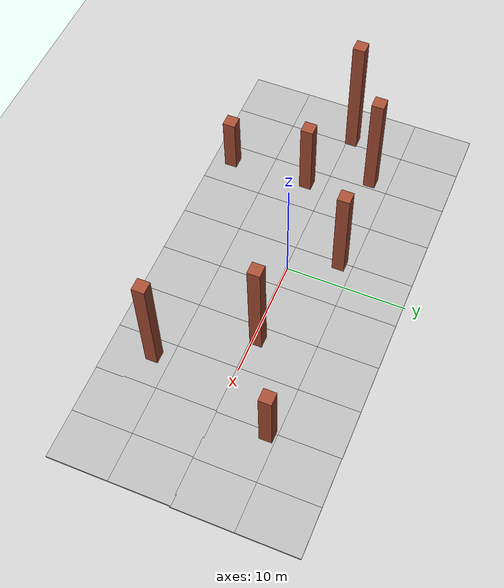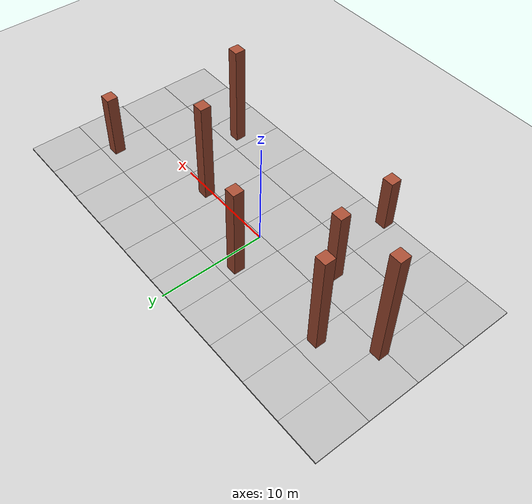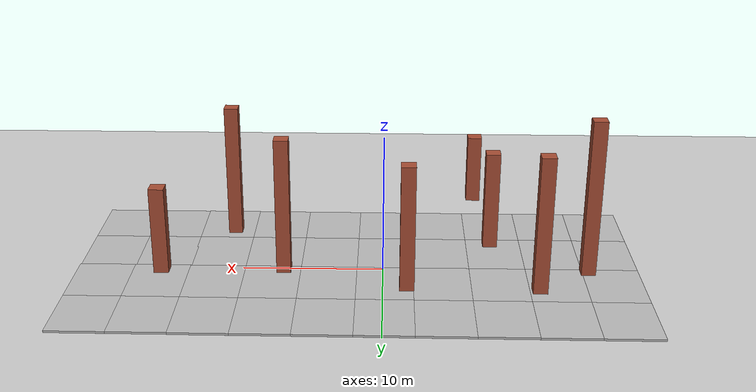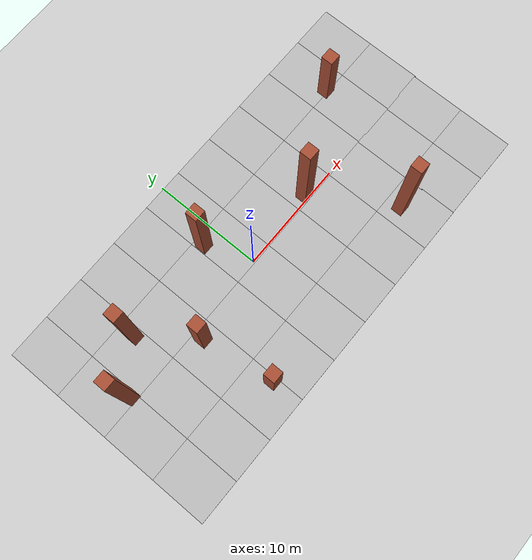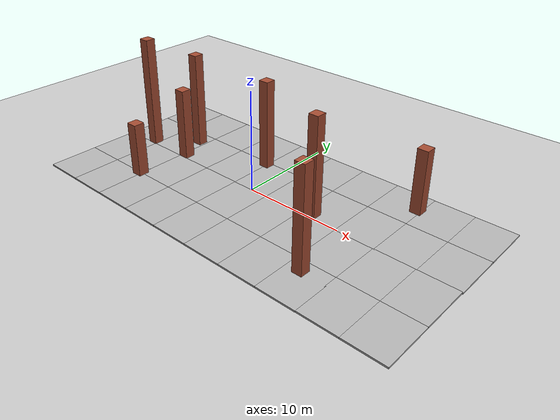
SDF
<sdf version="1.7">
 <world name="default">
  <light name="sun" type="directional">
   <pose>0 0 10 0 -0 0</pose>
   <diffuse>0.8 0.8 0.8 1</diffuse>
   <specular>0.1 0.1 0.1 1</specular>
   <attenuation>
    <range>1000</range>
    <constant>0.9</constant>
    <linear>0.01</linear>
    <quadratic>0.001</quadratic>
   </attenuation>
   <direction>-0.5 0.5 -1</direction>
   <spot><inner_angle>0</inner_angle><outer_angle>0</outer_angle><falloff>0</falloff></spot>
  </light>
  <model name="ground_plane">
   <static>1</static>
   <link name="link">
    <collision name="collision">
     <geometry><plane><normal>0 0 1</normal><size>100 100</size></plane></geometry>
     <surface><friction><ode><mu>100</mu><mu2>50</mu2></ode></friction></surface>
    </collision>
    <visual name="visual">
     <cast_shadows>0</cast_shadows>
     <geometry><plane><normal>0 0 1</normal><size>100 100</size></plane></geometry>
     <material>
      <script><uri>file://media/materials/scripts/gazebo.material</uri><name>Gazebo/Grey</name></script>
     </material>
    </visual>
   </link>
  </model>
  <gravity>0 0 -9.8</gravity>
  <magnetic_field>6e-06 2.3e-05 -4.2e-05</magnetic_field>
  <atmosphere type="adiabatic"/>
  <physics name="default_physics" default="0" type="ode">
   <max_step_size>0.001</max_step_size>
   <real_time_factor>1</real_time_factor>
   <real_time_update_rate>1000</real_time_update_rate>
  </physics>
  <scene><ambient>0.4 0.4 0.4 1</ambient><background>0.7 0.7 0.7 1</background><shadows>1</shadows></scene>
  <spherical_coordinates>
   <surface_model>EARTH_WGS84</surface_model>
   <latitude_deg>0</latitude_deg>
   <longitude_deg>0</longitude_deg>
   <elevation>0</elevation>
   <heading_deg>0</heading_deg>
  </spherical_coordinates>
  <model name="mud_box">
   <static>1</static>
   <link name="link">
    <collision name="collision"><geometry><box><size>8 10 0.2</size></box></geometry></collision>
    <visual name="visual_1">
     <pose>-2 2.5 0 0 -0 0</pose>
     <cast_shadows>0</cast_shadows>
     <geometry><box><size>4 5 0.2</size></box></geometry>
     <material>
      <script>
       <uri>model://mud_box/materials/scripts</uri>
       <uri>model://mud_box/materials/textures</uri>
       <name>vrc/mud</name>
      </script>
     </material>
    </visual>
    <visual name="visual_2">
     <pose>2 2.5 0 0 -0 0</pose>
     <cast_shadows>0</cast_shadows>
     <geometry><box><size>4 5 0.2</size></box></geometry>
     <material>
      <script>
       <uri>model://mud_box/materials/scripts</uri>
       <uri>model://mud_box/materials/textures</uri>
       <name>vrc/mud</name>
      </script>
     </material>
    </visual>
    <visual name="visual_3">
     <pose>2 -2.5 0 0 -0 0</pose>
     <cast_shadows>0</cast_shadows>
     <geometry><box><size>4 5 0.2</size></box></geometry>
     <material>
      <script>
       <uri>model://mud_box/materials/scripts</uri>
       <uri>model://mud_box/materials/textures</uri>
       <name>vrc/mud</name>
      </script>
     </material>
    </visual>
    <visual name="visual_4">
     <pose>-2 -2.5 0 0 -0 0</pose>
     <cast_shadows>0</cast_shadows>
     <geometry><box><size>4 5 0.2</size></box></geometry>
     <material>
      <script>
       <uri>model://mud_box/materials/scripts</uri>
       <uri>model://mud_box/materials/textures</uri>
       <name>vrc/mud</name>
      </script>
     </material>
    </visual>
   </link>
   <pose>-6.12765 4.83622 0 0 -0 0</pose>
  </model>
  <model name="mud_box_0">
   <static>1</static>
   <link name="link">
    <collision name="collision"><geometry><box><size>8 10 0.2</size></box></geometry></collision>
    <visual name="visual_1">
     <pose>-2 2.5 0 0 -0 0</pose>
     <cast_shadows>0</cast_shadows>
     <geometry><box><size>4 5 0.2</size></box></geometry>
     <material>
      <script>
       <uri>model://mud_box/materials/scripts</uri>
       <uri>model://mud_box/materials/textures</uri>
       <name>vrc/mud</name>
      </script>
     </material>
    </visual>
    <visual name="visual_2">
     <pose>2 2.5 0 0 -0 0</pose>
     <cast_shadows>0</cast_shadows>
     <geometry><box><size>4 5 0.2</size></box></geometry>
     <material>
      <script>
       <uri>model://mud_box/materials/scripts</uri>
       <uri>model://mud_box/materials/textures</uri>
       <name>vrc/mud</name>
      </script>
     </material>
    </visual>
    <visual name="visual_3">
     <pose>2 -2.5 0 0 -0 0</pose>
     <cast_shadows>0</cast_shadows>
     <geometry><box><size>4 5 0.2</size></box></geometry>
     <material>
      <script>
       <uri>model://mud_box/materials/scripts</uri>
       <uri>model://mud_box/materials/textures</uri>
       <name>vrc/mud</name>
      </script>
     </material>
    </visual>
    <visual name="visual_4">
     <pose>-2 -2.5 0 0 -0 0</pose>
     <cast_shadows>0</cast_shadows>
     <geometry><box><size>4 5 0.2</size></box></geometry>
     <material>
      <script>
       <uri>model://mud_box/materials/scripts</uri>
       <uri>model://mud_box/materials/textures</uri>
       <name>vrc/mud</name>
      </script>
     </material>
    </visual>
   </link>
   <pose>1.86767 4.83104 0 0 -0 0</pose>
  </model>
  <model name="mud_box_1">
   <static>1</static>
   <link name="link">
    <collision name="collision"><geometry><box><size>8 10 0.2</size></box></geometry></collision>
    <visual name="visual_1">
     <pose>-2 2.5 0 0 -0 0</pose>
     <cast_shadows>0</cast_shadows>
     <geometry><box><size>4 5 0.2</size></box></geometry>
     <material>
      <script>
       <uri>model://mud_box/materials/scripts</uri>
       <uri>model://mud_box/materials/textures</uri>
       <name>vrc/mud</name>
      </script>
     </material>
    </visual>
    <visual name="visual_2">
     <pose>2 2.5 0 0 -0 0</pose>
     <cast_shadows>0</cast_shadows>
     <geometry><box><size>4 5 0.2</size></box></geometry>
     <material>
      <script>
       <uri>model://mud_box/materials/scripts</uri>
       <uri>model://mud_box/materials/textures</uri>
       <name>vrc/mud</name>
      </script>
     </material>
    </visual>
    <visual name="visual_3">
     <pose>2 -2.5 0 0 -0 0</pose>
     <cast_shadows>0</cast_shadows>
     <geometry><box><size>4 5 0.2</size></box></geometry>
     <material>
      <script>
       <uri>model://mud_box/materials/scripts</uri>
       <uri>model://mud_box/materials/textures</uri>
       <name>vrc/mud</name>
      </script>
     </material>
    </visual>
    <visual name="visual_4">
     <pose>-2 -2.5 0 0 -0 0</pose>
     <cast_shadows>0</cast_shadows>
     <geometry><box><size>4 5 0.2</size></box></geometry>
     <material>
      <script>
       <uri>model://mud_box/materials/scripts</uri>
       <uri>model://mud_box/materials/textures</uri>
       <name>vrc/mud</name>
      </script>
     </material>
    </visual>
   </link>
   <pose>-6.12792 -5.13998 0 0 -0 0</pose>
  </model>
  <model name="mud_box_2">
   <static>1</static>
   <link name="link">
    <collision name="collision"><geometry><box><size>8 10 0.2</size></box></geometry></collision>
    <visual name="visual_1">
     <pose>-2 2.5 0 0 -0 0</pose>
     <cast_shadows>0</cast_shadows>
     <geometry><box><size>4 5 0.2</size></box></geometry>
     <material>
      <script>
       <uri>model://mud_box/materials/scripts</uri>
       <uri>model://mud_box/materials/textures</uri>
       <name>vrc/mud</name>
      </script>
     </material>
    </visual>
    <visual name="visual_2">
     <pose>2 2.5 0 0 -0 0</pose>
     <cast_shadows>0</cast_shadows>
     <geometry><box><size>4 5 0.2</size></box></geometry>
     <material>
      <script>
       <uri>model://mud_box/materials/scripts</uri>
       <uri>model://mud_box/materials/textures</uri>
       <name>vrc/mud</name>
      </script>
     </material>
    </visual>
    <visual name="visual_3">
     <pose>2 -2.5 0 0 -0 0</pose>
     <cast_shadows>0</cast_shadows>
     <geometry><box><size>4 5 0.2</size></box></geometry>
     <material>
      <script>
       <uri>model://mud_box/materials/scripts</uri>
       <uri>model://mud_box/materials/textures</uri>
       <name>vrc/mud</name>
      </script>
     </material>
    </visual>
    <visual name="visual_4">
     <pose>-2 -2.5 0 0 -0 0</pose>
     <cast_shadows>0</cast_shadows>
     <geometry><box><size>4 5 0.2</size></box></geometry>
     <material>
      <script>
       <uri>model://mud_box/materials/scripts</uri>
       <uri>model://mud_box/materials/textures</uri>
       <name>vrc/mud</name>
      </script>
     </material>
    </visual>
   </link>
   <pose>1.85975 -5.14192 0 0 -0 0</pose>
  </model>
  <model name="mud_box_0_clone">
   <static>1</static>
   <link name="link">
    <collision name="collision"><geometry><box><size>8 10 0.2</size></box></geometry></collision>
    <visual name="visual_1">
     <pose>-2 2.5 0 0 -0 0</pose>
     <cast_shadows>0</cast_shadows>
     <geometry><box><size>4 5 0.2</size></box></geometry>
     <material>
      <script>
       <uri>model://mud_box/materials/scripts</uri>
       <uri>model://mud_box/materials/textures</uri>
       <name>vrc/mud</name>
      </script>
     </material>
    </visual>
    <visual name="visual_2">
     <pose>2 2.5 0 0 -0 0</pose>
     <cast_shadows>0</cast_shadows>
     <geometry><box><size>4 5 0.2</size></box></geometry>
     <material>
      <script>
       <uri>model://mud_box/materials/scripts</uri>
       <uri>model://mud_box/materials/textures</uri>
       <name>vrc/mud</name>
      </script>
     </material>
    </visual>
    <visual name="visual_3">
     <pose>2 -2.5 0 0 -0 0</pose>
     <cast_shadows>0</cast_shadows>
     <geometry><box><size>4 5 0.2</size></box></geometry>
     <material>
      <script>
       <uri>model://mud_box/materials/scripts</uri>
       <uri>model://mud_box/materials/textures</uri>
       <name>vrc/mud</name>
      </script>
     </material>
    </visual>
    <visual name="visual_4">
     <pose>-2 -2.5 0 0 -0 0</pose>
     <cast_shadows>0</cast_shadows>
     <geometry><box><size>4 5 0.2</size></box></geometry>
     <material>
      <script>
       <uri>model://mud_box/materials/scripts</uri>
       <uri>model://mud_box/materials/textures</uri>
       <name>vrc/mud</name>
      </script>
     </material>
    </visual>
   </link>
   <pose>9.85757 -5.14216 0 0 -0 0</pose>
  </model>
  <model name="mud_box_0_clone_clone">
   <static>1</static>
   <link name="link">
    <collision name="collision"><geometry><box><size>8 10 0.2</size></box></geometry></collision>
    <visual name="visual_1">
     <pose>-2 2.5 0 0 -0 0</pose>
     <cast_shadows>0</cast_shadows>
     <geometry><box><size>4 5 0.2</size></box></geometry>
     <material>
      <script>
       <uri>model://mud_box/materials/scripts</uri>
       <uri>model://mud_box/materials/textures</uri>
       <name>vrc/mud</name>
      </script>
     </material>
    </visual>
    <visual name="visual_2">
     <pose>2 2.5 0 0 -0 0</pose>
     <cast_shadows>0</cast_shadows>
     <geometry><box><size>4 5 0.2</size></box></geometry>
     <material>
      <script>
       <uri>model://mud_box/materials/scripts</uri>
       <uri>model://mud_box/materials/textures</uri>
       <name>vrc/mud</name>
      </script>
     </material>
    </visual>
    <visual name="visual_3">
     <pose>2 -2.5 0 0 -0 0</pose>
     <cast_shadows>0</cast_shadows>
     <geometry><box><size>4 5 0.2</size></box></geometry>
     <material>
      <script>
       <uri>model://mud_box/materials/scripts</uri>
       <uri>model://mud_box/materials/textures</uri>
       <name>vrc/mud</name>
      </script>
     </material>
    </visual>
    <visual name="visual_4">
     <pose>-2 -2.5 0 0 -0 0</pose>
     <cast_shadows>0</cast_shadows>
     <geometry><box><size>4 5 0.2</size></box></geometry>
     <material>
      <script>
       <uri>model://mud_box/materials/scripts</uri>
       <uri>model://mud_box/materials/textures</uri>
       <name>vrc/mud</name>
      </script>
     </material>
    </visual>
   </link>
   <pose>17.7661 -5.12084 0 0 -0 0</pose>
  </model>
  <model name="mud_box_0_clone_clone_0">
   <static>1</static>
   <link name="link">
    <collision name="collision"><geometry><box><size>8 10 0.2</size></box></geometry></collision>
    <visual name="visual_1">
     <pose>-2 2.5 0 0 -0 0</pose>
     <cast_shadows>0</cast_shadows>
     <geometry><box><size>4 5 0.2</size></box></geometry>
     <material>
      <script>
       <uri>model://mud_box/materials/scripts</uri>
       <uri>model://mud_box/materials/textures</uri>
       <name>vrc/mud</name>
      </script>
     </material>
    </visual>
    <visual name="visual_2">
     <pose>2 2.5 0 0 -0 0</pose>
     <cast_shadows>0</cast_shadows>
     <geometry><box><size>4 5 0.2</size></box></geometry>
     <material>
      <script>
       <uri>model://mud_box/materials/scripts</uri>
       <uri>model://mud_box/materials/textures</uri>
       <name>vrc/mud</name>
      </script>
     </material>
    </visual>
    <visual name="visual_3">
     <pose>2 -2.5 0 0 -0 0</pose>
     <cast_shadows>0</cast_shadows>
     <geometry><box><size>4 5 0.2</size></box></geometry>
     <material>
      <script>
       <uri>model://mud_box/materials/scripts</uri>
       <uri>model://mud_box/materials/textures</uri>
       <name>vrc/mud</name>
      </script>
     </material>
    </visual>
    <visual name="visual_4">
     <pose>-2 -2.5 0 0 -0 0</pose>
     <cast_shadows>0</cast_shadows>
     <geometry><box><size>4 5 0.2</size></box></geometry>
     <material>
      <script>
       <uri>model://mud_box/materials/scripts</uri>
       <uri>model://mud_box/materials/textures</uri>
       <name>vrc/mud</name>
      </script>
     </material>
    </visual>
   </link>
   <pose>17.8432 4.79546 0 0 -0 0</pose>
  </model>
  <model name="mud_box_0_clone_clone_1">
   <static>1</static>
   <link name="link">
    <collision name="collision"><geometry><box><size>8 10 0.2</size></box></geometry></collision>
    <visual name="visual_1">
     <pose>-2 2.5 0 0 -0 0</pose>
     <cast_shadows>0</cast_shadows>
     <geometry><box><size>4 5 0.2</size></box></geometry>
     <material>
      <script>
       <uri>model://mud_box/materials/scripts</uri>
       <uri>model://mud_box/materials/textures</uri>
       <name>vrc/mud</name>
      </script>
     </material>
    </visual>
    <visual name="visual_2">
     <pose>2 2.5 0 0 -0 0</pose>
     <cast_shadows>0</cast_shadows>
     <geometry><box><size>4 5 0.2</size></box></geometry>
     <material>
      <script>
       <uri>model://mud_box/materials/scripts</uri>
       <uri>model://mud_box/materials/textures</uri>
       <name>vrc/mud</name>
      </script>
     </material>
    </visual>
    <visual name="visual_3">
     <pose>2 -2.5 0 0 -0 0</pose>
     <cast_shadows>0</cast_shadows>
     <geometry><box><size>4 5 0.2</size></box></geometry>
     <material>
      <script>
       <uri>model://mud_box/materials/scripts</uri>
       <uri>model://mud_box/materials/textures</uri>
       <name>vrc/mud</name>
      </script>
     </material>
    </visual>
    <visual name="visual_4">
     <pose>-2 -2.5 0 0 -0 0</pose>
     <cast_shadows>0</cast_shadows>
     <geometry><box><size>4 5 0.2</size></box></geometry>
     <material>
      <script>
       <uri>model://mud_box/materials/scripts</uri>
       <uri>model://mud_box/materials/textures</uri>
       <name>vrc/mud</name>
      </script>
     </material>
    </visual>
   </link>
   <pose>-14.1276 -5.15209 0 0 -0 0</pose>
  </model>
  <model name="mud_box_0_clone_clone_2">
   <static>1</static>
   <link name="link">
    <collision name="collision"><geometry><box><size>8 10 0.2</size></box></geometry></collision>
    <visual name="visual_1">
     <pose>-2 2.5 0 0 -0 0</pose>
     <cast_shadows>0</cast_shadows>
     <geometry><box><size>4 5 0.2</size></box></geometry>
     <material>
      <script>
       <uri>model://mud_box/materials/scripts</uri>
       <uri>model://mud_box/materials/textures</uri>
       <name>vrc/mud</name>
      </script>
     </material>
    </visual>
    <visual name="visual_2">
     <pose>2 2.5 0 0 -0 0</pose>
     <cast_shadows>0</cast_shadows>
     <geometry><box><size>4 5 0.2</size></box></geometry>
     <material>
      <script>
       <uri>model://mud_box/materials/scripts</uri>
       <uri>model://mud_box/materials/textures</uri>
       <name>vrc/mud</name>
      </script>
     </material>
    </visual>
    <visual name="visual_3">
     <pose>2 -2.5 0 0 -0 0</pose>
     <cast_shadows>0</cast_shadows>
     <geometry><box><size>4 5 0.2</size></box></geometry>
     <material>
      <script>
       <uri>model://mud_box/materials/scripts</uri>
       <uri>model://mud_box/materials/textures</uri>
       <name>vrc/mud</name>
      </script>
     </material>
    </visual>
    <visual name="visual_4">
     <pose>-2 -2.5 0 0 -0 0</pose>
     <cast_shadows>0</cast_shadows>
     <geometry><box><size>4 5 0.2</size></box></geometry>
     <material>
      <script>
       <uri>model://mud_box/materials/scripts</uri>
       <uri>model://mud_box/materials/textures</uri>
       <name>vrc/mud</name>
      </script>
     </material>
    </visual>
   </link>
   <pose>-14.1258 4.84756 0 0 -0 0</pose>
  </model>
  <model name="mud_box_3">
   <static>1</static>
   <link name="link">
    <collision name="collision"><geometry><box><size>8 10 0.2</size></box></geometry></collision>
    <visual name="visual_1">
     <pose>-2 2.5 0 0 -0 0</pose>
     <cast_shadows>0</cast_shadows>
     <geometry><box><size>4 5 0.2</size></box></geometry>
     <material>
      <script>
       <uri>model://mud_box/materials/scripts</uri>
       <uri>model://mud_box/materials/textures</uri>
       <name>vrc/mud</name>
      </script>
     </material>
    </visual>
    <visual name="visual_2">
     <pose>2 2.5 0 0 -0 0</pose>
     <cast_shadows>0</cast_shadows>
     <geometry><box><size>4 5 0.2</size></box></geometry>
     <material>
      <script>
       <uri>model://mud_box/materials/scripts</uri>
       <uri>model://mud_box/materials/textures</uri>
       <name>vrc/mud</name>
      </script>
     </material>
    </visual>
    <visual name="visual_3">
     <pose>2 -2.5 0 0 -0 0</pose>
     <cast_shadows>0</cast_shadows>
     <geometry><box><size>4 5 0.2</size></box></geometry>
     <material>
      <script>
       <uri>model://mud_box/materials/scripts</uri>
       <uri>model://mud_box/materials/textures</uri>
       <name>vrc/mud</name>
      </script>
     </material>
    </visual>
    <visual name="visual_4">
     <pose>-2 -2.5 0 0 -0 0</pose>
     <cast_shadows>0</cast_shadows>
     <geometry><box><size>4 5 0.2</size></box></geometry>
     <material>
      <script>
       <uri>model://mud_box/materials/scripts</uri>
       <uri>model://mud_box/materials/textures</uri>
       <name>vrc/mud</name>
      </script>
     </material>
    </visual>
   </link>
   <pose>9.84986 4.82173 0 0 -0 0</pose>
  </model>
  <audio><device>default</device></audio>
  <model name="Untitled">
   <pose>-10.5221 3.76724 0 0 -0 0</pose>
   <link name="Wall_0">
    <collision name="Wall_0_Collision">
     <geometry><box><size>1.01 1 9</size></box></geometry>
     <pose>0 0 5 0 -0 0</pose>
    </collision>
    <visual name="Wall_0_Visual">
     <pose>0 0 5 0 -0 0</pose>
     <geometry><box><size>1.01 1 10</size></box></geometry>
     <material>
      <script><uri>file://media/materials/scripts/gazebo.material</uri><name>Gazebo/Bricks</name></script>
      <ambient>1 1 1 1</ambient>
     </material>
     <meta><layer>0</layer></meta>
    </visual>
    <pose>-0.275 -0.51 0 0 -0 0</pose>
   </link>
   <static>1</static>
  </model>
  <model name="Untitled_clone">
   <pose>-7.3242 -0.826882 0 0 -0 0</pose>
   <link name="Wall_0">
    <collision name="Wall_0_Collision">
     <geometry><box><size>1.01 1 10</size></box></geometry>
     <pose>0 0 5 0 -0 0</pose>
    </collision>
    <visual name="Wall_0_Visual">
     <pose>0 0 5 0 -0 0</pose>
     <geometry><box><size>1.01 1 7</size></box></geometry>
     <material>
      <script><uri>file://media/materials/scripts/gazebo.material</uri><name>Gazebo/Bricks</name></script>
      <ambient>1 1 1 1</ambient>
     </material>
     <meta><layer>0</layer></meta>
    </visual>
    <pose>-0.275 -0.51 0 0 -0 0</pose>
   </link>
   <static>1</static>
  </model>
  <model name="Untitled_clone_0">
   <pose>-14.2371 0.78762 0 0 -0 0</pose>
   <link name="Wall_0">
    <collision name="Wall_0_Collision">
     <geometry><box><size>1.01 1 5</size></box></geometry>
     <pose>0 0 5 0 -0 0</pose>
    </collision>
    <visual name="Wall_0_Visual">
     <pose>0 0 5 0 -0 0</pose>
     <geometry><box><size>1.01 1 13</size></box></geometry>
     <material>
      <script><uri>file://media/materials/scripts/gazebo.material</uri><name>Gazebo/Bricks</name></script>
      <ambient>1 1 1 1</ambient>
     </material>
     <meta><layer>0</layer></meta>
    </visual>
    <pose>-0.275 -0.51 0 0 -0 0</pose>
   </link>
   <static>1</static>
  </model>
  <model name="Untitled_clone_1">
   <pose>-6.4547 -7.10206 0 0 -0 0</pose>
   <link name="Wall_0">
    <collision name="Wall_0_Collision">
     <geometry><box><size>1.01 1 10</size></box></geometry>
     <pose>0 0 5 0 -0 0</pose>
    </collision>
    <visual name="Wall_0_Visual">
     <pose>0 0 5 0 -0 0</pose>
     <geometry><box><size>1.01 1 5</size></box></geometry>
     <material>
      <script><uri>file://media/materials/scripts/gazebo.material</uri><name>Gazebo/Bricks</name></script>
      <ambient>1 1 1 1</ambient>
     </material>
     <meta><layer>0</layer></meta>
    </visual>
    <pose>-0.275 -0.51 0 0 -0 0</pose>
   </link>
   <static>1</static>
  </model>
  <model name="Untitled_clone_2">
   <pose>15.187 4.99069 0 0 -0 0</pose>
   <link name="Wall_0">
    <collision name="Wall_0_Collision">
     <geometry><box><size>1.01 1 8</size></box></geometry>
     <pose>0 0 5 0 -0 0</pose>
    </collision>
    <visual name="Wall_0_Visual">
     <pose>0 0 5 0 -0 0</pose>
     <geometry><box><size>1.01 1 6</size></box></geometry>
     <material>
      <script><uri>file://media/materials/scripts/gazebo.material</uri><name>Gazebo/Bricks</name></script>
      <ambient>1 1 1 1</ambient>
     </material>
     <meta><layer>0</layer></meta>
    </visual>
    <pose>-0.275 -0.51 0 0 -0 0</pose>
   </link>
   <static>1</static>
  </model>
  <model name="Untitled_clone_3">
   <pose>11.5749 -5.93521 0 0 -0 0</pose>
   <link name="Wall_0">
    <collision name="Wall_0_Collision">
     <geometry><box><size>1.01 1 12</size></box></geometry>
     <pose>0 0 5 0 -0 0</pose>
    </collision>
    <visual name="Wall_0_Visual">
     <pose>0 0 5 0 -0 0</pose>
     <geometry><box><size>1.01 1 10</size></box></geometry>
     <material>
      <script><uri>file://media/materials/scripts/gazebo.material</uri><name>Gazebo/Bricks</name></script>
      <ambient>1 1 1 1</ambient>
     </material>
     <meta><layer>0</layer></meta>
    </visual>
    <pose>-0.275 -0.51 0 0 -0 0</pose>
   </link>
   <static>1</static>
  </model>
  <model name="Untitled_clone_4">
   <pose>7.32395 0.888971 0 0 -0 0</pose>
   <link name="Wall_0">
    <collision name="Wall_0_Collision">
     <geometry><box><size>1.01 1 5</size></box></geometry>
     <pose>0 0 5 0 -0 0</pose>
    </collision>
    <visual name="Wall_0_Visual">
     <pose>0 0 5 0 -0 0</pose>
     <geometry><box><size>1.01 1 10</size></box></geometry>
     <material>
      <script><uri>file://media/materials/scripts/gazebo.material</uri><name>Gazebo/Bricks</name></script>
      <ambient>1 1 1 1</ambient>
     </material>
     <meta><layer>0</layer></meta>
    </visual>
    <pose>-0.275 -0.51 0 0 -0 0</pose>
   </link>
   <static>1</static>
  </model>
  <model name="Untitled_clone_5">
   <pose>-1.36445 4.35694 0 0 -0 0</pose>
   <link name="Wall_0">
    <collision name="Wall_0_Collision">
     <geometry><box><size>1.01 1 7</size></box></geometry>
     <pose>0 0 5 0 -0 0</pose>
    </collision>
    <visual name="Wall_0_Visual">
     <pose>0 0 5 0 -0 0</pose>
     <geometry><box><size>1.01 1 9</size></box></geometry>
     <material>
      <script><uri>file://media/materials/scripts/gazebo.material</uri><name>Gazebo/Bricks</name></script>
      <ambient>1 1 1 1</ambient>
     </material>
     <meta><layer>0</layer></meta>
    </visual>
    <pose>-0.275 -0.51 0 0 -0 0</pose>
   </link>
   <static>1</static>
  </model>
 </world>
</sdf>
